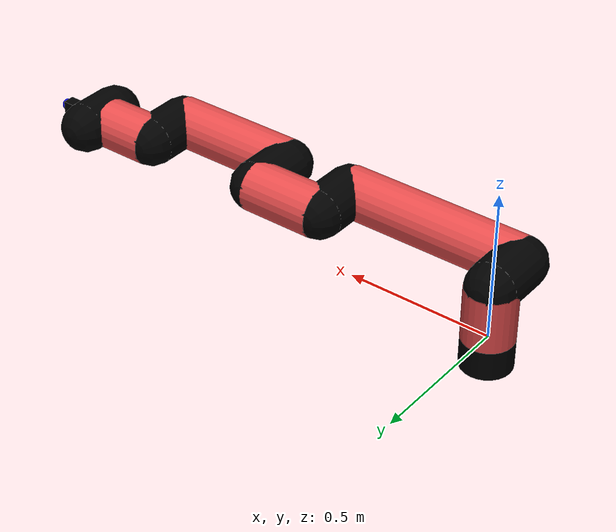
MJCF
<mujoco model="manipulator">
		<compiler angle="degree" coordinate="local" inertiafromgeom="auto" meshdir="meshes/"/>
		<option gravity="0 0 0" integrator="RK4" iterations="30" timestep="0.01"/>

		<default>
		<joint armature="1" limited="true" stiffness="10" damping="15" frictionloss="5.0"/>
		<geom conaffinity="1" condim="3" contype="1" friction=".5 .1 .1" margin="0.002"/>
		<motor ctrllimited="true"/>
		<position ctrllimited="true"/>
		</default>

		<asset>
		<texture builtin="gradient" height="100" rgb1="1.0 1.0 1.0" rgb2="1.0 1.0 1.0" type="skybox" width="100"/>
		<texture builtin="flat" height="32" name="arm_tex" rgb1="0.9 0.3 0.3" type="2d" width="32"/>
		<texture builtin="flat" height="32" name="gripper_tex" rgb1="0.0 0.0 0.0" type="cube" width="32"/>

		<material name="arm_mat" shininess="0.1" specular="0.1" texture="arm_tex"/>
		<material name="gripper_mat" shininess="1" specular="1" texture="gripper_tex"/>
		</asset>

		<worldbody>
		<light cutoff="45" diffuse=".8 .8 .8" dir="0 0.16 -1" directional="false" name="light" pos="0 -2.0 8.0" specular="0.3 0.3 0.3"/>

		<body name="base_link" pos="0 0 -0.1">
		<geom fromto="0 0 0 0 0 0.1" material="arm_mat" name="base_link" rgba="0.0 0.0 0.0 1" size="0.085" type="cylinder"/>
		</body>

		<body name="l1" pos="0 0 0">
<geom fromto="0 0 0 0 0 0.18" material="arm_mat" name="l1" rgba="0.9 0.3 0.3 1" size="0.085" type="cylinder"/>
<geom fromto="0 0 0.18 0 -0.16 0.18" material="arm_mat" name="l1_ex" rgba="0.0 0.0 0.0 1" size="0.085" type="capsule"/>
<joint axis="0 0 1" name="j1" pos="0 0 0" range="-90 90" damping="20.09" frictionloss="14.11"/>

<body name="l2" pos="0 -0.16 0.18">
<geom fromto="0 0 0 0.63 0 0" material="arm_mat" name="l2" rgba="0.9 0.3 0.3 1" size="0.085" type="cylinder"/>
<geom fromto="0.63 0 0 0.63 0.16 0" material="arm_mat" name="l2_ex" rgba="0.0 0.0 0.0 1" size="0.085" type="capsule"/>
<joint axis="0.0 1.0 0.0" name="j2" pos="0 0 0" range="-90 60" damping="33.01" frictionloss="13.41"/>

<body name="l3" pos="0.63 0.16 0">
<geom fromto="0 0 0 0.25 0 0" material="arm_mat" name="l3" rgba="0.9 0.3 0.3 1" size="0.085" type="cylinder"/>
<geom fromto="0.25 0 0 0.25 -0.16 0" material="arm_mat" name="l3_ex" rgba="0.0 0.0 0.0 1" size="0.085" type="capsule"/>
<joint axis="0.0 1.0 0.0" name="j3" pos="0 0 0" range="-30 60" damping="23.74" frictionloss="13.67"/>

<body name="l4" pos="0.25 -0.16 0">
<geom fromto="0 0 0 0.44 0 0" material="arm_mat" name="l4" rgba="0.9 0.3 0.3 1" size="0.085" type="cylinder"/>
<geom fromto="0.44 0 0 0.44 0.16 0" material="arm_mat" name="l4_ex" rgba="0.0 0.0 0.0 1" size="0.085" type="capsule"/>
<joint axis="0.0 1.0 0.0" name="j4" pos="0 0 0" range="-30 60" damping="41.62" frictionloss="6.35"/>

<body name="l5" pos="0.44 0.16 0">
<geom fromto="0 0 0 0.18 0 0" material="arm_mat" name="l5" rgba="0.9 0.3 0.3 1" size="0.085" type="cylinder"/>
<joint axis="0.0 1.0 0.0" name="j5" pos="0 0 0" range="-30 60" damping="16.17" frictionloss="5.73"/>

<body name="gripper" pos="0.18 0 0">
<geom fromto="0.05 -0.07 0 0.05 0.07 0" material="gripper_mat" name="gripper" rgba="0.0 0.0 0.0 1" size="0.085" type="capsule"/><joint axis="1 0 0" name="j6" pos="0 0 0" range="-90 90" damping="15" frictionloss="5.0"/><body name="finger" pos="0.1 0 0">
<geom fromto="0 0.0 0 0.1 0.0 0" material="gripper_mat" name="finger" rgba="0.0 0.0 0.0 1" size="0.020 0.06 0.06" type="box"/>
</body>
<site name="current" pos="0.2 0. 0.0" rgba="0. 0. 1.0 1" size="0.02" type="sphere"/>
</body>
</body>
</body>
</body>
</body>
</body>
</worldbody>
<actuator>
<motor ctrllimited="true" ctrlrange="-1.0 1.0" joint="j1" gear="57.04"/>
<motor ctrllimited="true" ctrlrange="-1.0 1.0" joint="j2" gear="69.45"/>
<motor ctrllimited="true" ctrlrange="-1.0 1.0" joint="j3" gear="88.32"/>
<motor ctrllimited="true" ctrlrange="-1.0 1.0" joint="j4" gear="84.09"/>
<motor ctrllimited="true" ctrlrange="-1.0 1.0" joint="j5" gear="109.29"/>
<motor ctrllimited="true" ctrlrange="-1.0 1.0" joint="j6" gear="80"/>
</actuator>
</mujoco>
